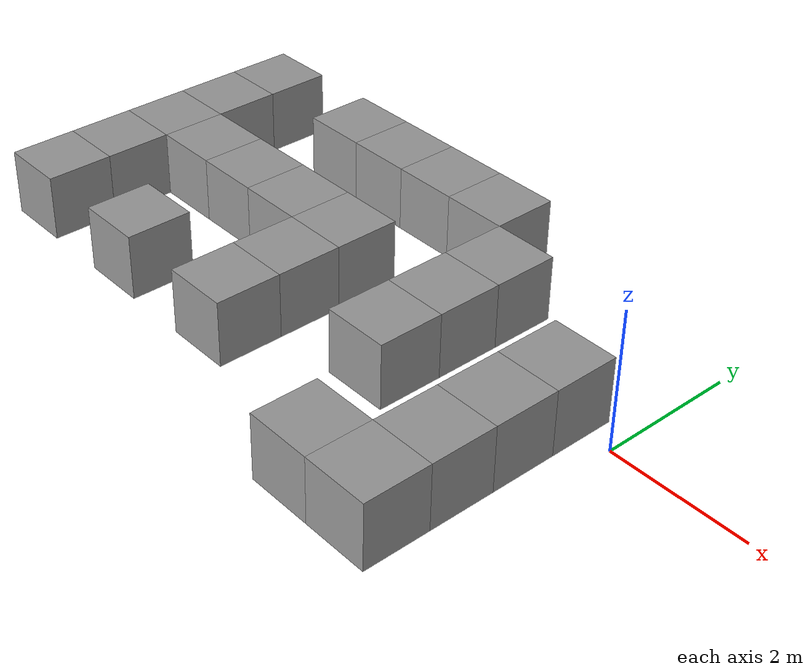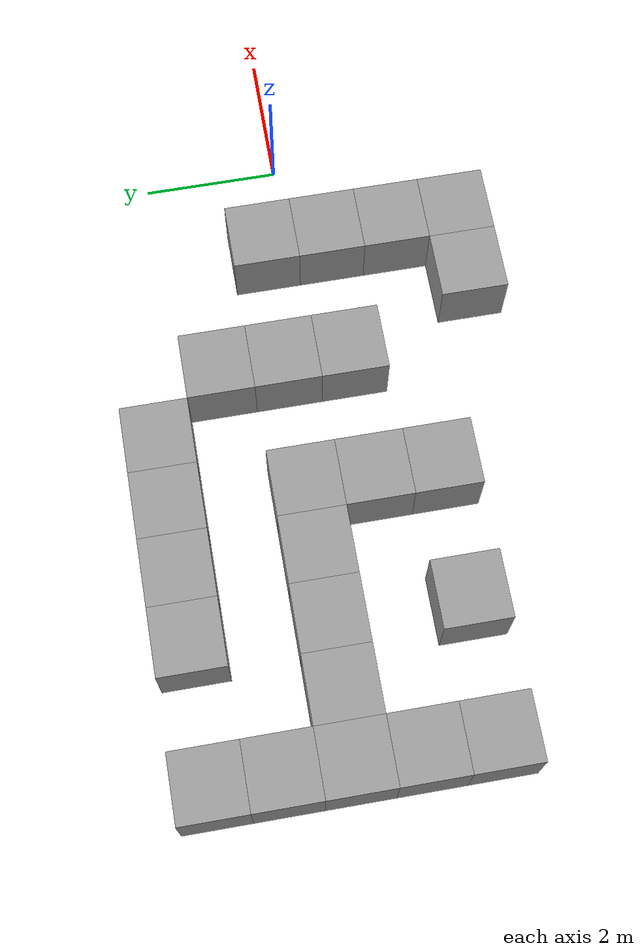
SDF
<sdf version="1.7">
 <model name="maze1">
  <link name="link_1_clone_104">
   <inertial>
    <mass>1</mass>
    <inertia>
     <ixx>0.166667</ixx>
     <ixy>0</ixy>
     <ixz>0</ixz>
     <iyy>0.166667</iyy>
     <iyz>0</iyz>
     <izz>0.166667</izz>
    </inertia>
   </inertial>
   <pose>-8.24618 0.374651 -0 0 -0 0</pose>
   <visual name="visual">
    <geometry><box><size>1 1 1</size></box></geometry>
    <material>
     <lighting>1</lighting>
     <script><uri>file://media/materials/scripts/gazebo.material</uri><name>Gazebo/Grey</name></script>
     <shader type="pixel"><normal_map>__default__</normal_map></shader>
     <ambient>0.3 0.3 0.3 1</ambient>
     <diffuse>0.7 0.7 0.7 1</diffuse>
     <specular>0.01 0.01 0.01 1</specular>
     <emissive>0 0 0 1</emissive>
    </material>
   </visual>
   <collision name="collision">
    <geometry><box><size>1 1 1</size></box></geometry>
    <surface>
     <friction>
      <ode><mu>1</mu><mu2>1</mu2><fdir1>0 0 0</fdir1><slip1>0</slip1><slip2>0</slip2></ode>
      <torsional>
       <coefficient>1</coefficient>
       <patch_radius>0</patch_radius>
       <surface_radius>0</surface_radius>
       <use_patch_radius>1</use_patch_radius>
       <ode><slip>0</slip></ode>
      </torsional>
     </friction>
     <bounce><restitution_coefficient>0</restitution_coefficient><threshold>1e+06</threshold></bounce>
     <contact>
      <collide_without_contact>0</collide_without_contact>
      <collide_without_contact_bitmask>1</collide_without_contact_bitmask>
      <collide_bitmask>1</collide_bitmask>
      <ode>
       <soft_cfm>0</soft_cfm>
       <soft_erp>0.2</soft_erp>
       <kp>1e+13</kp>
       <kd>1</kd>
       <max_vel>0.01</max_vel>
       <min_depth>0</min_depth>
      </ode>
      <bullet>
       <split_impulse>1</split_impulse>
       <split_impulse_penetration_threshold>-0.01</split_impulse_penetration_threshold>
       <soft_cfm>0</soft_cfm>
       <soft_erp>0.2</soft_erp>
       <kp>1e+13</kp>
       <kd>1</kd>
      </bullet>
     </contact>
    </surface>
   </collision>
  </link>
  <link name="link_1_clone_105">
   <inertial>
    <mass>1</mass>
    <inertia>
     <ixx>0.166667</ixx>
     <ixy>0</ixy>
     <ixz>0</ixz>
     <iyy>0.166667</iyy>
     <iyz>0</iyz>
     <izz>0.166667</izz>
    </inertia>
   </inertial>
   <pose>-7.24618 2.37465 -0 0 -0 0</pose>
   <visual name="visual">
    <geometry><box><size>1 1 1</size></box></geometry>
    <material>
     <lighting>1</lighting>
     <script><uri>file://media/materials/scripts/gazebo.material</uri><name>Gazebo/Grey</name></script>
     <shader type="pixel"><normal_map>__default__</normal_map></shader>
     <ambient>0.3 0.3 0.3 1</ambient>
     <diffuse>0.7 0.7 0.7 1</diffuse>
     <specular>0.01 0.01 0.01 1</specular>
     <emissive>0 0 0 1</emissive>
    </material>
   </visual>
   <collision name="collision">
    <geometry><box><size>1 1 1</size></box></geometry>
    <surface>
     <friction>
      <ode><mu>1</mu><mu2>1</mu2><fdir1>0 0 0</fdir1><slip1>0</slip1><slip2>0</slip2></ode>
      <torsional>
       <coefficient>1</coefficient>
       <patch_radius>0</patch_radius>
       <surface_radius>0</surface_radius>
       <use_patch_radius>1</use_patch_radius>
       <ode><slip>0</slip></ode>
      </torsional>
     </friction>
     <bounce><restitution_coefficient>0</restitution_coefficient><threshold>1e+06</threshold></bounce>
     <contact>
      <collide_without_contact>0</collide_without_contact>
      <collide_without_contact_bitmask>1</collide_without_contact_bitmask>
      <collide_bitmask>1</collide_bitmask>
      <ode>
       <soft_cfm>0</soft_cfm>
       <soft_erp>0.2</soft_erp>
       <kp>1e+13</kp>
       <kd>1</kd>
       <max_vel>0.01</max_vel>
       <min_depth>0</min_depth>
      </ode>
      <bullet>
       <split_impulse>1</split_impulse>
       <split_impulse_penetration_threshold>-0.01</split_impulse_penetration_threshold>
       <soft_cfm>0</soft_cfm>
       <soft_erp>0.2</soft_erp>
       <kp>1e+13</kp>
       <kd>1</kd>
      </bullet>
     </contact>
    </surface>
   </collision>
  </link>
  <link name="link_1_clone_106">
   <inertial>
    <mass>1</mass>
    <inertia>
     <ixx>0.166667</ixx>
     <ixy>0</ixy>
     <ixz>0</ixz>
     <iyy>0.166667</iyy>
     <iyz>0</iyz>
     <izz>0.166667</izz>
    </inertia>
   </inertial>
   <pose>-6.24618 2.37465 -0 0 -0 0</pose>
   <visual name="visual">
    <geometry><box><size>1 1 1</size></box></geometry>
    <material>
     <lighting>1</lighting>
     <script><uri>file://media/materials/scripts/gazebo.material</uri><name>Gazebo/Grey</name></script>
     <shader type="pixel"><normal_map>__default__</normal_map></shader>
     <ambient>0.3 0.3 0.3 1</ambient>
     <diffuse>0.7 0.7 0.7 1</diffuse>
     <specular>0.01 0.01 0.01 1</specular>
     <emissive>0 0 0 1</emissive>
    </material>
   </visual>
   <collision name="collision">
    <geometry><box><size>1 1 1</size></box></geometry>
    <surface>
     <friction>
      <ode><mu>1</mu><mu2>1</mu2><fdir1>0 0 0</fdir1><slip1>0</slip1><slip2>0</slip2></ode>
      <torsional>
       <coefficient>1</coefficient>
       <patch_radius>0</patch_radius>
       <surface_radius>0</surface_radius>
       <use_patch_radius>1</use_patch_radius>
       <ode><slip>0</slip></ode>
      </torsional>
     </friction>
     <bounce><restitution_coefficient>0</restitution_coefficient><threshold>1e+06</threshold></bounce>
     <contact>
      <collide_without_contact>0</collide_without_contact>
      <collide_without_contact_bitmask>1</collide_without_contact_bitmask>
      <collide_bitmask>1</collide_bitmask>
      <ode>
       <soft_cfm>0</soft_cfm>
       <soft_erp>0.2</soft_erp>
       <kp>1e+13</kp>
       <kd>1</kd>
       <max_vel>0.01</max_vel>
       <min_depth>0</min_depth>
      </ode>
      <bullet>
       <split_impulse>1</split_impulse>
       <split_impulse_penetration_threshold>-0.01</split_impulse_penetration_threshold>
       <soft_cfm>0</soft_cfm>
       <soft_erp>0.2</soft_erp>
       <kp>1e+13</kp>
       <kd>1</kd>
      </bullet>
     </contact>
    </surface>
   </collision>
  </link>
  <link name="link_1_clone_107">
   <inertial>
    <mass>1</mass>
    <inertia>
     <ixx>0.166667</ixx>
     <ixy>0</ixy>
     <ixz>0</ixz>
     <iyy>0.166667</iyy>
     <iyz>0</iyz>
     <izz>0.166667</izz>
    </inertia>
   </inertial>
   <pose>-5.24618 2.37465 -0 0 -0 0</pose>
   <visual name="visual">
    <geometry><box><size>1 1 1</size></box></geometry>
    <material>
     <lighting>1</lighting>
     <script><uri>file://media/materials/scripts/gazebo.material</uri><name>Gazebo/Grey</name></script>
     <shader type="pixel"><normal_map>__default__</normal_map></shader>
     <ambient>0.3 0.3 0.3 1</ambient>
     <diffuse>0.7 0.7 0.7 1</diffuse>
     <specular>0.01 0.01 0.01 1</specular>
     <emissive>0 0 0 1</emissive>
    </material>
   </visual>
   <collision name="collision">
    <geometry><box><size>1 1 1</size></box></geometry>
    <surface>
     <friction>
      <ode><mu>1</mu><mu2>1</mu2><fdir1>0 0 0</fdir1><slip1>0</slip1><slip2>0</slip2></ode>
      <torsional>
       <coefficient>1</coefficient>
       <patch_radius>0</patch_radius>
       <surface_radius>0</surface_radius>
       <use_patch_radius>1</use_patch_radius>
       <ode><slip>0</slip></ode>
      </torsional>
     </friction>
     <bounce><restitution_coefficient>0</restitution_coefficient><threshold>1e+06</threshold></bounce>
     <contact>
      <collide_without_contact>0</collide_without_contact>
      <collide_without_contact_bitmask>1</collide_without_contact_bitmask>
      <collide_bitmask>1</collide_bitmask>
      <ode>
       <soft_cfm>0</soft_cfm>
       <soft_erp>0.2</soft_erp>
       <kp>1e+13</kp>
       <kd>1</kd>
       <max_vel>0.01</max_vel>
       <min_depth>0</min_depth>
      </ode>
      <bullet>
       <split_impulse>1</split_impulse>
       <split_impulse_penetration_threshold>-0.01</split_impulse_penetration_threshold>
       <soft_cfm>0</soft_cfm>
       <soft_erp>0.2</soft_erp>
       <kp>1e+13</kp>
       <kd>1</kd>
      </bullet>
     </contact>
    </surface>
   </collision>
  </link>
  <link name="link_1_clone_108">
   <inertial>
    <mass>1</mass>
    <inertia>
     <ixx>0.166667</ixx>
     <ixy>0</ixy>
     <ixz>0</ixz>
     <iyy>0.166667</iyy>
     <iyz>0</iyz>
     <izz>0.166667</izz>
    </inertia>
   </inertial>
   <pose>-4.24618 2.37465 -0 0 -0 0</pose>
   <visual name="visual">
    <geometry><box><size>1 1 1</size></box></geometry>
    <material>
     <lighting>1</lighting>
     <script><uri>file://media/materials/scripts/gazebo.material</uri><name>Gazebo/Grey</name></script>
     <shader type="pixel"><normal_map>__default__</normal_map></shader>
     <ambient>0.3 0.3 0.3 1</ambient>
     <diffuse>0.7 0.7 0.7 1</diffuse>
     <specular>0.01 0.01 0.01 1</specular>
     <emissive>0 0 0 1</emissive>
    </material>
   </visual>
   <collision name="collision">
    <geometry><box><size>1 1 1</size></box></geometry>
    <surface>
     <friction>
      <ode><mu>1</mu><mu2>1</mu2><fdir1>0 0 0</fdir1><slip1>0</slip1><slip2>0</slip2></ode>
      <torsional>
       <coefficient>1</coefficient>
       <patch_radius>0</patch_radius>
       <surface_radius>0</surface_radius>
       <use_patch_radius>1</use_patch_radius>
       <ode><slip>0</slip></ode>
      </torsional>
     </friction>
     <bounce><restitution_coefficient>0</restitution_coefficient><threshold>1e+06</threshold></bounce>
     <contact>
      <collide_without_contact>0</collide_without_contact>
      <collide_without_contact_bitmask>1</collide_without_contact_bitmask>
      <collide_bitmask>1</collide_bitmask>
      <ode>
       <soft_cfm>0</soft_cfm>
       <soft_erp>0.2</soft_erp>
       <kp>1e+13</kp>
       <kd>1</kd>
       <max_vel>0.01</max_vel>
       <min_depth>0</min_depth>
      </ode>
      <bullet>
       <split_impulse>1</split_impulse>
       <split_impulse_penetration_threshold>-0.01</split_impulse_penetration_threshold>
       <soft_cfm>0</soft_cfm>
       <soft_erp>0.2</soft_erp>
       <kp>1e+13</kp>
       <kd>1</kd>
      </bullet>
     </contact>
    </surface>
   </collision>
  </link>
  <link name="link_1_clone_109">
   <inertial>
    <mass>1</mass>
    <inertia>
     <ixx>0.166667</ixx>
     <ixy>0</ixy>
     <ixz>0</ixz>
     <iyy>0.166667</iyy>
     <iyz>0</iyz>
     <izz>0.166667</izz>
    </inertia>
   </inertial>
   <pose>-5.24618 0.374651 -0 0 -0 0</pose>
   <visual name="visual">
    <geometry><box><size>1 1 1</size></box></geometry>
    <material>
     <lighting>1</lighting>
     <script><uri>file://media/materials/scripts/gazebo.material</uri><name>Gazebo/Grey</name></script>
     <shader type="pixel"><normal_map>__default__</normal_map></shader>
     <ambient>0.3 0.3 0.3 1</ambient>
     <diffuse>0.7 0.7 0.7 1</diffuse>
     <specular>0.01 0.01 0.01 1</specular>
     <emissive>0 0 0 1</emissive>
    </material>
   </visual>
   <collision name="collision">
    <geometry><box><size>1 1 1</size></box></geometry>
    <surface>
     <friction>
      <ode><mu>1</mu><mu2>1</mu2><fdir1>0 0 0</fdir1><slip1>0</slip1><slip2>0</slip2></ode>
      <torsional>
       <coefficient>1</coefficient>
       <patch_radius>0</patch_radius>
       <surface_radius>0</surface_radius>
       <use_patch_radius>1</use_patch_radius>
       <ode><slip>0</slip></ode>
      </torsional>
     </friction>
     <bounce><restitution_coefficient>0</restitution_coefficient><threshold>1e+06</threshold></bounce>
     <contact>
      <collide_without_contact>0</collide_without_contact>
      <collide_without_contact_bitmask>1</collide_without_contact_bitmask>
      <collide_bitmask>1</collide_bitmask>
      <ode>
       <soft_cfm>0</soft_cfm>
       <soft_erp>0.2</soft_erp>
       <kp>1e+13</kp>
       <kd>1</kd>
       <max_vel>0.01</max_vel>
       <min_depth>0</min_depth>
      </ode>
      <bullet>
       <split_impulse>1</split_impulse>
       <split_impulse_penetration_threshold>-0.01</split_impulse_penetration_threshold>
       <soft_cfm>0</soft_cfm>
       <soft_erp>0.2</soft_erp>
       <kp>1e+13</kp>
       <kd>1</kd>
      </bullet>
     </contact>
    </surface>
   </collision>
  </link>
  <link name="link_1_clone_110">
   <inertial>
    <mass>1</mass>
    <inertia>
     <ixx>0.166667</ixx>
     <ixy>0</ixy>
     <ixz>0</ixz>
     <iyy>0.166667</iyy>
     <iyz>0</iyz>
     <izz>0.166667</izz>
    </inertia>
   </inertial>
   <pose>-3.24618 0.374651 -0 0 -0 0</pose>
   <visual name="visual">
    <geometry><box><size>1 1 1</size></box></geometry>
    <material>
     <lighting>1</lighting>
     <script><uri>file://media/materials/scripts/gazebo.material</uri><name>Gazebo/Grey</name></script>
     <shader type="pixel"><normal_map>__default__</normal_map></shader>
     <ambient>0.3 0.3 0.3 1</ambient>
     <diffuse>0.7 0.7 0.7 1</diffuse>
     <specular>0.01 0.01 0.01 1</specular>
     <emissive>0 0 0 1</emissive>
    </material>
   </visual>
   <collision name="collision">
    <geometry><box><size>1 1 1</size></box></geometry>
    <surface>
     <friction>
      <ode><mu>1</mu><mu2>1</mu2><fdir1>0 0 0</fdir1><slip1>0</slip1><slip2>0</slip2></ode>
      <torsional>
       <coefficient>1</coefficient>
       <patch_radius>0</patch_radius>
       <surface_radius>0</surface_radius>
       <use_patch_radius>1</use_patch_radius>
       <ode><slip>0</slip></ode>
      </torsional>
     </friction>
     <bounce><restitution_coefficient>0</restitution_coefficient><threshold>1e+06</threshold></bounce>
     <contact>
      <collide_without_contact>0</collide_without_contact>
      <collide_without_contact_bitmask>1</collide_without_contact_bitmask>
      <collide_bitmask>1</collide_bitmask>
      <ode>
       <soft_cfm>0</soft_cfm>
       <soft_erp>0.2</soft_erp>
       <kp>1e+13</kp>
       <kd>1</kd>
       <max_vel>0.01</max_vel>
       <min_depth>0</min_depth>
      </ode>
      <bullet>
       <split_impulse>1</split_impulse>
       <split_impulse_penetration_threshold>-0.01</split_impulse_penetration_threshold>
       <soft_cfm>0</soft_cfm>
       <soft_erp>0.2</soft_erp>
       <kp>1e+13</kp>
       <kd>1</kd>
      </bullet>
     </contact>
    </surface>
   </collision>
  </link>
  <link name="link_1_clone_111">
   <inertial>
    <mass>1</mass>
    <inertia>
     <ixx>0.166667</ixx>
     <ixy>0</ixy>
     <ixz>0</ixz>
     <iyy>0.166667</iyy>
     <iyz>0</iyz>
     <izz>0.166667</izz>
    </inertia>
   </inertial>
   <pose>-3.24618 -0.625349 -0 0 -0 0</pose>
   <visual name="visual">
    <geometry><box><size>1 1 1</size></box></geometry>
    <material>
     <lighting>1</lighting>
     <script><uri>file://media/materials/scripts/gazebo.material</uri><name>Gazebo/Grey</name></script>
     <shader type="pixel"><normal_map>__default__</normal_map></shader>
     <ambient>0.3 0.3 0.3 1</ambient>
     <diffuse>0.7 0.7 0.7 1</diffuse>
     <specular>0.01 0.01 0.01 1</specular>
     <emissive>0 0 0 1</emissive>
    </material>
   </visual>
   <collision name="collision">
    <geometry><box><size>1 1 1</size></box></geometry>
    <surface>
     <friction>
      <ode><mu>1</mu><mu2>1</mu2><fdir1>0 0 0</fdir1><slip1>0</slip1><slip2>0</slip2></ode>
      <torsional>
       <coefficient>1</coefficient>
       <patch_radius>0</patch_radius>
       <surface_radius>0</surface_radius>
       <use_patch_radius>1</use_patch_radius>
       <ode><slip>0</slip></ode>
      </torsional>
     </friction>
     <bounce><restitution_coefficient>0</restitution_coefficient><threshold>1e+06</threshold></bounce>
     <contact>
      <collide_without_contact>0</collide_without_contact>
      <collide_without_contact_bitmask>1</collide_without_contact_bitmask>
      <collide_bitmask>1</collide_bitmask>
      <ode>
       <soft_cfm>0</soft_cfm>
       <soft_erp>0.2</soft_erp>
       <kp>1e+13</kp>
       <kd>1</kd>
       <max_vel>0.01</max_vel>
       <min_depth>0</min_depth>
      </ode>
      <bullet>
       <split_impulse>1</split_impulse>
       <split_impulse_penetration_threshold>-0.01</split_impulse_penetration_threshold>
       <soft_cfm>0</soft_cfm>
       <soft_erp>0.2</soft_erp>
       <kp>1e+13</kp>
       <kd>1</kd>
      </bullet>
     </contact>
    </surface>
   </collision>
  </link>
  <link name="link_1_clone_112">
   <inertial>
    <mass>1</mass>
    <inertia>
     <ixx>0.166667</ixx>
     <ixy>0</ixy>
     <ixz>0</ixz>
     <iyy>0.166667</iyy>
     <iyz>0</iyz>
     <izz>0.166667</izz>
    </inertia>
   </inertial>
   <pose>-7.24618 0.374651 -0 0 -0 0</pose>
   <visual name="visual">
    <geometry><box><size>1 1 1</size></box></geometry>
    <material>
     <lighting>1</lighting>
     <script><uri>file://media/materials/scripts/gazebo.material</uri><name>Gazebo/Grey</name></script>
     <shader type="pixel"><normal_map>__default__</normal_map></shader>
     <ambient>0.3 0.3 0.3 1</ambient>
     <diffuse>0.7 0.7 0.7 1</diffuse>
     <specular>0.01 0.01 0.01 1</specular>
     <emissive>0 0 0 1</emissive>
    </material>
   </visual>
   <collision name="collision">
    <geometry><box><size>1 1 1</size></box></geometry>
    <surface>
     <friction>
      <ode><mu>1</mu><mu2>1</mu2><fdir1>0 0 0</fdir1><slip1>0</slip1><slip2>0</slip2></ode>
      <torsional>
       <coefficient>1</coefficient>
       <patch_radius>0</patch_radius>
       <surface_radius>0</surface_radius>
       <use_patch_radius>1</use_patch_radius>
       <ode><slip>0</slip></ode>
      </torsional>
     </friction>
     <bounce><restitution_coefficient>0</restitution_coefficient><threshold>1e+06</threshold></bounce>
     <contact>
      <collide_without_contact>0</collide_without_contact>
      <collide_without_contact_bitmask>1</collide_without_contact_bitmask>
      <collide_bitmask>1</collide_bitmask>
      <ode>
       <soft_cfm>0</soft_cfm>
       <soft_erp>0.2</soft_erp>
       <kp>1e+13</kp>
       <kd>1</kd>
       <max_vel>0.01</max_vel>
       <min_depth>0</min_depth>
      </ode>
      <bullet>
       <split_impulse>1</split_impulse>
       <split_impulse_penetration_threshold>-0.01</split_impulse_penetration_threshold>
       <soft_cfm>0</soft_cfm>
       <soft_erp>0.2</soft_erp>
       <kp>1e+13</kp>
       <kd>1</kd>
      </bullet>
     </contact>
    </surface>
   </collision>
  </link>
  <link name="link_1_clone_113">
   <inertial>
    <mass>1</mass>
    <inertia>
     <ixx>0.166667</ixx>
     <ixy>0</ixy>
     <ixz>0</ixz>
     <iyy>0.166667</iyy>
     <iyz>0</iyz>
     <izz>0.166667</izz>
    </inertia>
   </inertial>
   <pose>-6.24618 0.374651 -0 0 -0 0</pose>
   <visual name="visual">
    <geometry><box><size>1 1 1</size></box></geometry>
    <material>
     <lighting>1</lighting>
     <script><uri>file://media/materials/scripts/gazebo.material</uri><name>Gazebo/Grey</name></script>
     <shader type="pixel"><normal_map>__default__</normal_map></shader>
     <ambient>0.3 0.3 0.3 1</ambient>
     <diffuse>0.7 0.7 0.7 1</diffuse>
     <specular>0.01 0.01 0.01 1</specular>
     <emissive>0 0 0 1</emissive>
    </material>
   </visual>
   <collision name="collision">
    <geometry><box><size>1 1 1</size></box></geometry>
    <surface>
     <friction>
      <ode><mu>1</mu><mu2>1</mu2><fdir1>0 0 0</fdir1><slip1>0</slip1><slip2>0</slip2></ode>
      <torsional>
       <coefficient>1</coefficient>
       <patch_radius>0</patch_radius>
       <surface_radius>0</surface_radius>
       <use_patch_radius>1</use_patch_radius>
       <ode><slip>0</slip></ode>
      </torsional>
     </friction>
     <bounce><restitution_coefficient>0</restitution_coefficient><threshold>1e+06</threshold></bounce>
     <contact>
      <collide_without_contact>0</collide_without_contact>
      <collide_without_contact_bitmask>1</collide_without_contact_bitmask>
      <collide_bitmask>1</collide_bitmask>
      <ode>
       <soft_cfm>0</soft_cfm>
       <soft_erp>0.2</soft_erp>
       <kp>1e+13</kp>
       <kd>1</kd>
       <max_vel>0.01</max_vel>
       <min_depth>0</min_depth>
      </ode>
      <bullet>
       <split_impulse>1</split_impulse>
       <split_impulse_penetration_threshold>-0.01</split_impulse_penetration_threshold>
       <soft_cfm>0</soft_cfm>
       <soft_erp>0.2</soft_erp>
       <kp>1e+13</kp>
       <kd>1</kd>
      </bullet>
     </contact>
    </surface>
   </collision>
  </link>
  <link name="link_1_clone_115">
   <inertial>
    <mass>1</mass>
    <inertia>
     <ixx>0.166667</ixx>
     <ixy>0</ixy>
     <ixz>0</ixz>
     <iyy>0.166667</iyy>
     <iyz>0</iyz>
     <izz>0.166667</izz>
    </inertia>
   </inertial>
   <pose>-3.24618 1.37465 -0 0 -0 0</pose>
   <visual name="visual">
    <geometry><box><size>1 1 1</size></box></geometry>
    <material>
     <lighting>1</lighting>
     <script><uri>file://media/materials/scripts/gazebo.material</uri><name>Gazebo/Grey</name></script>
     <shader type="pixel"><normal_map>__default__</normal_map></shader>
     <ambient>0.3 0.3 0.3 1</ambient>
     <diffuse>0.7 0.7 0.7 1</diffuse>
     <specular>0.01 0.01 0.01 1</specular>
     <emissive>0 0 0 1</emissive>
    </material>
   </visual>
   <collision name="collision">
    <geometry><box><size>1 1 1</size></box></geometry>
    <surface>
     <friction>
      <ode><mu>1</mu><mu2>1</mu2><fdir1>0 0 0</fdir1><slip1>0</slip1><slip2>0</slip2></ode>
      <torsional>
       <coefficient>1</coefficient>
       <patch_radius>0</patch_radius>
       <surface_radius>0</surface_radius>
       <use_patch_radius>1</use_patch_radius>
       <ode><slip>0</slip></ode>
      </torsional>
     </friction>
     <bounce><restitution_coefficient>0</restitution_coefficient><threshold>1e+06</threshold></bounce>
     <contact>
      <collide_without_contact>0</collide_without_contact>
      <collide_without_contact_bitmask>1</collide_without_contact_bitmask>
      <collide_bitmask>1</collide_bitmask>
      <ode>
       <soft_cfm>0</soft_cfm>
       <soft_erp>0.2</soft_erp>
       <kp>1e+13</kp>
       <kd>1</kd>
       <max_vel>0.01</max_vel>
       <min_depth>0</min_depth>
      </ode>
      <bullet>
       <split_impulse>1</split_impulse>
       <split_impulse_penetration_threshold>-0.01</split_impulse_penetration_threshold>
       <soft_cfm>0</soft_cfm>
       <soft_erp>0.2</soft_erp>
       <kp>1e+13</kp>
       <kd>1</kd>
      </bullet>
     </contact>
    </surface>
   </collision>
  </link>
  <link name="link_1_clone_116">
   <inertial>
    <mass>1</mass>
    <inertia>
     <ixx>0.166667</ixx>
     <ixy>0</ixy>
     <ixz>0</ixz>
     <iyy>0.166667</iyy>
     <iyz>0</iyz>
     <izz>0.166667</izz>
    </inertia>
   </inertial>
   <pose>-5.24618 -0.625349 -0 0 -0 0</pose>
   <visual name="visual">
    <geometry><box><size>1 1 1</size></box></geometry>
    <material>
     <lighting>1</lighting>
     <script><uri>file://media/materials/scripts/gazebo.material</uri><name>Gazebo/Grey</name></script>
     <shader type="pixel"><normal_map>__default__</normal_map></shader>
     <ambient>0.3 0.3 0.3 1</ambient>
     <diffuse>0.7 0.7 0.7 1</diffuse>
     <specular>0.01 0.01 0.01 1</specular>
     <emissive>0 0 0 1</emissive>
    </material>
   </visual>
   <collision name="collision">
    <geometry><box><size>1 1 1</size></box></geometry>
    <surface>
     <friction>
      <ode><mu>1</mu><mu2>1</mu2><fdir1>0 0 0</fdir1><slip1>0</slip1><slip2>0</slip2></ode>
      <torsional>
       <coefficient>1</coefficient>
       <patch_radius>0</patch_radius>
       <surface_radius>0</surface_radius>
       <use_patch_radius>1</use_patch_radius>
       <ode><slip>0</slip></ode>
      </torsional>
     </friction>
     <bounce><restitution_coefficient>0</restitution_coefficient><threshold>1e+06</threshold></bounce>
     <contact>
      <collide_without_contact>0</collide_without_contact>
      <collide_without_contact_bitmask>1</collide_without_contact_bitmask>
      <collide_bitmask>1</collide_bitmask>
      <ode>
       <soft_cfm>0</soft_cfm>
       <soft_erp>0.2</soft_erp>
       <kp>1e+13</kp>
       <kd>1</kd>
       <max_vel>0.01</max_vel>
       <min_depth>0</min_depth>
      </ode>
      <bullet>
       <split_impulse>1</split_impulse>
       <split_impulse_penetration_threshold>-0.01</split_impulse_penetration_threshold>
       <soft_cfm>0</soft_cfm>
       <soft_erp>0.2</soft_erp>
       <kp>1e+13</kp>
       <kd>1</kd>
      </bullet>
     </contact>
    </surface>
   </collision>
  </link>
  <link name="link_1_clone_117">
   <inertial>
    <mass>1</mass>
    <inertia>
     <ixx>0.166667</ixx>
     <ixy>0</ixy>
     <ixz>0</ixz>
     <iyy>0.166667</iyy>
     <iyz>0</iyz>
     <izz>0.166667</izz>
    </inertia>
   </inertial>
   <pose>-5.24618 -1.62535 -0 0 -0 0</pose>
   <visual name="visual">
    <geometry><box><size>1 1 1</size></box></geometry>
    <material>
     <lighting>1</lighting>
     <script><uri>file://media/materials/scripts/gazebo.material</uri><name>Gazebo/Grey</name></script>
     <shader type="pixel"><normal_map>__default__</normal_map></shader>
     <ambient>0.3 0.3 0.3 1</ambient>
     <diffuse>0.7 0.7 0.7 1</diffuse>
     <specular>0.01 0.01 0.01 1</specular>
     <emissive>0 0 0 1</emissive>
    </material>
   </visual>
   <collision name="collision">
    <geometry><box><size>1 1 1</size></box></geometry>
    <surface>
     <friction>
      <ode><mu>1</mu><mu2>1</mu2><fdir1>0 0 0</fdir1><slip1>0</slip1><slip2>0</slip2></ode>
      <torsional>
       <coefficient>1</coefficient>
       <patch_radius>0</patch_radius>
       <surface_radius>0</surface_radius>
       <use_patch_radius>1</use_patch_radius>
       <ode><slip>0</slip></ode>
      </torsional>
     </friction>
     <bounce><restitution_coefficient>0</restitution_coefficient><threshold>1e+06</threshold></bounce>
     <contact>
      <collide_without_contact>0</collide_without_contact>
      <collide_without_contact_bitmask>1</collide_without_contact_bitmask>
      <collide_bitmask>1</collide_bitmask>
      <ode>
       <soft_cfm>0</soft_cfm>
       <soft_erp>0.2</soft_erp>
       <kp>1e+13</kp>
       <kd>1</kd>
       <max_vel>0.01</max_vel>
       <min_depth>0</min_depth>
      </ode>
      <bullet>
       <split_impulse>1</split_impulse>
       <split_impulse_penetration_threshold>-0.01</split_impulse_penetration_threshold>
       <soft_cfm>0</soft_cfm>
       <soft_erp>0.2</soft_erp>
       <kp>1e+13</kp>
       <kd>1</kd>
      </bullet>
     </contact>
    </surface>
   </collision>
  </link>
  <link name="link_1_clone_121">
   <inertial>
    <mass>1</mass>
    <inertia>
     <ixx>0.166667</ixx>
     <ixy>0</ixy>
     <ixz>0</ixz>
     <iyy>0.166667</iyy>
     <iyz>0</iyz>
     <izz>0.166667</izz>
    </inertia>
   </inertial>
   <pose>-7.24642 -1.626 -0 0 -0 0</pose>
   <visual name="visual">
    <geometry><box><size>1 1 1</size></box></geometry>
    <material>
     <lighting>1</lighting>
     <script><uri>file://media/materials/scripts/gazebo.material</uri><name>Gazebo/Grey</name></script>
     <shader type="pixel"><normal_map>__default__</normal_map></shader>
     <ambient>0.3 0.3 0.3 1</ambient>
     <diffuse>0.7 0.7 0.7 1</diffuse>
     <specular>0.01 0.01 0.01 1</specular>
     <emissive>0 0 0 1</emissive>
    </material>
   </visual>
   <collision name="collision">
    <geometry><box><size>1 1 1</size></box></geometry>
    <surface>
     <friction>
      <ode><mu>1</mu><mu2>1</mu2><fdir1>0 0 0</fdir1><slip1>0</slip1><slip2>0</slip2></ode>
      <torsional>
       <coefficient>1</coefficient>
       <patch_radius>0</patch_radius>
       <surface_radius>0</surface_radius>
       <use_patch_radius>1</use_patch_radius>
       <ode><slip>0</slip></ode>
      </torsional>
     </friction>
     <bounce><restitution_coefficient>0</restitution_coefficient><threshold>1e+06</threshold></bounce>
     <contact>
      <collide_without_contact>0</collide_without_contact>
      <collide_without_contact_bitmask>1</collide_without_contact_bitmask>
      <collide_bitmask>1</collide_bitmask>
      <ode>
       <soft_cfm>0</soft_cfm>
       <soft_erp>0.2</soft_erp>
       <kp>1e+13</kp>
       <kd>1</kd>
       <max_vel>0.01</max_vel>
       <min_depth>0</min_depth>
      </ode>
      <bullet>
       <split_impulse>1</split_impulse>
       <split_impulse_penetration_threshold>-0.01</split_impulse_penetration_threshold>
       <soft_cfm>0</soft_cfm>
       <soft_erp>0.2</soft_erp>
       <kp>1e+13</kp>
       <kd>1</kd>
      </bullet>
     </contact>
    </surface>
   </collision>
  </link>
  <link name="link_1_clone_175">
   <inertial>
    <mass>1</mass>
    <inertia>
     <ixx>0.166667</ixx>
     <ixy>0</ixy>
     <ixz>0</ixz>
     <iyy>0.166667</iyy>
     <iyz>0</iyz>
     <izz>0.166667</izz>
    </inertia>
   </inertial>
   <pose>-1.24618 -2.62535 -0 0 -0 0</pose>
   <visual name="visual">
    <geometry><box><size>1 1 1</size></box></geometry>
    <material>
     <lighting>1</lighting>
     <script><uri>file://media/materials/scripts/gazebo.material</uri><name>Gazebo/Grey</name></script>
     <shader type="pixel"><normal_map>__default__</normal_map></shader>
     <ambient>0.3 0.3 0.3 1</ambient>
     <diffuse>0.7 0.7 0.7 1</diffuse>
     <specular>0.01 0.01 0.01 1</specular>
     <emissive>0 0 0 1</emissive>
    </material>
   </visual>
   <collision name="collision">
    <geometry><box><size>1 1 1</size></box></geometry>
    <surface>
     <friction>
      <ode><mu>1</mu><mu2>1</mu2><fdir1>0 0 0</fdir1><slip1>0</slip1><slip2>0</slip2></ode>
      <torsional>
       <coefficient>1</coefficient>
       <patch_radius>0</patch_radius>
       <surface_radius>0</surface_radius>
       <use_patch_radius>1</use_patch_radius>
       <ode><slip>0</slip></ode>
      </torsional>
     </friction>
     <bounce><restitution_coefficient>0</restitution_coefficient><threshold>1e+06</threshold></bounce>
     <contact>
      <collide_without_contact>0</collide_without_contact>
      <collide_without_contact_bitmask>1</collide_without_contact_bitmask>
      <collide_bitmask>1</collide_bitmask>
      <ode>
       <soft_cfm>0</soft_cfm>
       <soft_erp>0.2</soft_erp>
       <kp>1e+13</kp>
       <kd>1</kd>
       <max_vel>0.01</max_vel>
       <min_depth>0</min_depth>
      </ode>
      <bullet>
       <split_impulse>1</split_impulse>
       <split_impulse_penetration_threshold>-0.01</split_impulse_penetration_threshold>
       <soft_cfm>0</soft_cfm>
       <soft_erp>0.2</soft_erp>
       <kp>1e+13</kp>
       <kd>1</kd>
      </bullet>
     </contact>
    </surface>
   </collision>
  </link>
  <link name="link_1_clone_176">
   <inertial>
    <mass>1</mass>
    <inertia>
     <ixx>0.166667</ixx>
     <ixy>0</ixy>
     <ixz>0</ixz>
     <iyy>0.166667</iyy>
     <iyz>0</iyz>
     <izz>0.166667</izz>
    </inertia>
   </inertial>
   <pose>-2.24618 -2.62535 -0 0 -0 0</pose>
   <visual name="visual">
    <geometry><box><size>1 1 1</size></box></geometry>
    <material>
     <lighting>1</lighting>
     <script><uri>file://media/materials/scripts/gazebo.material</uri><name>Gazebo/Grey</name></script>
     <shader type="pixel"><normal_map>__default__</normal_map></shader>
     <ambient>0.3 0.3 0.3 1</ambient>
     <diffuse>0.7 0.7 0.7 1</diffuse>
     <specular>0.01 0.01 0.01 1</specular>
     <emissive>0 0 0 1</emissive>
    </material>
   </visual>
   <collision name="collision">
    <geometry><box><size>1 1 1</size></box></geometry>
    <surface>
     <friction>
      <ode><mu>1</mu><mu2>1</mu2><fdir1>0 0 0</fdir1><slip1>0</slip1><slip2>0</slip2></ode>
      <torsional>
       <coefficient>1</coefficient>
       <patch_radius>0</patch_radius>
       <surface_radius>0</surface_radius>
       <use_patch_radius>1</use_patch_radius>
       <ode><slip>0</slip></ode>
      </torsional>
     </friction>
     <bounce><restitution_coefficient>0</restitution_coefficient><threshold>1e+06</threshold></bounce>
     <contact>
      <collide_without_contact>0</collide_without_contact>
      <collide_without_contact_bitmask>1</collide_without_contact_bitmask>
      <collide_bitmask>1</collide_bitmask>
      <ode>
       <soft_cfm>0</soft_cfm>
       <soft_erp>0.2</soft_erp>
       <kp>1e+13</kp>
       <kd>1</kd>
       <max_vel>0.01</max_vel>
       <min_depth>0</min_depth>
      </ode>
      <bullet>
       <split_impulse>1</split_impulse>
       <split_impulse_penetration_threshold>-0.01</split_impulse_penetration_threshold>
       <soft_cfm>0</soft_cfm>
       <soft_erp>0.2</soft_erp>
       <kp>1e+13</kp>
       <kd>1</kd>
      </bullet>
     </contact>
    </surface>
   </collision>
  </link>
  <link name="link_1_clone_180">
   <inertial>
    <mass>1</mass>
    <inertia>
     <ixx>0.166667</ixx>
     <ixy>0</ixy>
     <ixz>0</ixz>
     <iyy>0.166667</iyy>
     <iyz>0</iyz>
     <izz>0.166667</izz>
    </inertia>
   </inertial>
   <pose>-1.24618 0.374651 -0 0 -0 0</pose>
   <visual name="visual">
    <geometry><box><size>1 1 1</size></box></geometry>
    <material>
     <lighting>1</lighting>
     <script><uri>file://media/materials/scripts/gazebo.material</uri><name>Gazebo/Grey</name></script>
     <shader type="pixel"><normal_map>__default__</normal_map></shader>
     <ambient>0.3 0.3 0.3 1</ambient>
     <diffuse>0.7 0.7 0.7 1</diffuse>
     <specular>0.01 0.01 0.01 1</specular>
     <emissive>0 0 0 1</emissive>
    </material>
   </visual>
   <collision name="collision">
    <geometry><box><size>1 1 1</size></box></geometry>
    <surface>
     <friction>
      <ode><mu>1</mu><mu2>1</mu2><fdir1>0 0 0</fdir1><slip1>0</slip1><slip2>0</slip2></ode>
      <torsional>
       <coefficient>1</coefficient>
       <patch_radius>0</patch_radius>
       <surface_radius>0</surface_radius>
       <use_patch_radius>1</use_patch_radius>
       <ode><slip>0</slip></ode>
      </torsional>
     </friction>
     <bounce><restitution_coefficient>0</restitution_coefficient><threshold>1e+06</threshold></bounce>
     <contact>
      <collide_without_contact>0</collide_without_contact>
      <collide_without_contact_bitmask>1</collide_without_contact_bitmask>
      <collide_bitmask>1</collide_bitmask>
      <ode>
       <soft_cfm>0</soft_cfm>
       <soft_erp>0.2</soft_erp>
       <kp>1e+13</kp>
       <kd>1</kd>
       <max_vel>0.01</max_vel>
       <min_depth>0</min_depth>
      </ode>
      <bullet>
       <split_impulse>1</split_impulse>
       <split_impulse_penetration_threshold>-0.01</split_impulse_penetration_threshold>
       <soft_cfm>0</soft_cfm>
       <soft_erp>0.2</soft_erp>
       <kp>1e+13</kp>
       <kd>1</kd>
      </bullet>
     </contact>
    </surface>
   </collision>
  </link>
  <link name="link_1_clone_181">
   <inertial>
    <mass>1</mass>
    <inertia>
     <ixx>0.166667</ixx>
     <ixy>0</ixy>
     <ixz>0</ixz>
     <iyy>0.166667</iyy>
     <iyz>0</iyz>
     <izz>0.166667</izz>
    </inertia>
   </inertial>
   <pose>-1.24618 -0.625349 -0 0 -0 0</pose>
   <visual name="visual">
    <geometry><box><size>1 1 1</size></box></geometry>
    <material>
     <lighting>1</lighting>
     <script><uri>file://media/materials/scripts/gazebo.material</uri><name>Gazebo/Grey</name></script>
     <shader type="pixel"><normal_map>__default__</normal_map></shader>
     <ambient>0.3 0.3 0.3 1</ambient>
     <diffuse>0.7 0.7 0.7 1</diffuse>
     <specular>0.01 0.01 0.01 1</specular>
     <emissive>0 0 0 1</emissive>
    </material>
   </visual>
   <collision name="collision">
    <geometry><box><size>1 1 1</size></box></geometry>
    <surface>
     <friction>
      <ode><mu>1</mu><mu2>1</mu2><fdir1>0 0 0</fdir1><slip1>0</slip1><slip2>0</slip2></ode>
      <torsional>
       <coefficient>1</coefficient>
       <patch_radius>0</patch_radius>
       <surface_radius>0</surface_radius>
       <use_patch_radius>1</use_patch_radius>
       <ode><slip>0</slip></ode>
      </torsional>
     </friction>
     <bounce><restitution_coefficient>0</restitution_coefficient><threshold>1e+06</threshold></bounce>
     <contact>
      <collide_without_contact>0</collide_without_contact>
      <collide_without_contact_bitmask>1</collide_without_contact_bitmask>
      <collide_bitmask>1</collide_bitmask>
      <ode>
       <soft_cfm>0</soft_cfm>
       <soft_erp>0.2</soft_erp>
       <kp>1e+13</kp>
       <kd>1</kd>
       <max_vel>0.01</max_vel>
       <min_depth>0</min_depth>
      </ode>
      <bullet>
       <split_impulse>1</split_impulse>
       <split_impulse_penetration_threshold>-0.01</split_impulse_penetration_threshold>
       <soft_cfm>0</soft_cfm>
       <soft_erp>0.2</soft_erp>
       <kp>1e+13</kp>
       <kd>1</kd>
      </bullet>
     </contact>
    </surface>
   </collision>
  </link>
  <link name="link_1_clone_182">
   <inertial>
    <mass>1</mass>
    <inertia>
     <ixx>0.166667</ixx>
     <ixy>0</ixy>
     <ixz>0</ixz>
     <iyy>0.166667</iyy>
     <iyz>0</iyz>
     <izz>0.166667</izz>
    </inertia>
   </inertial>
   <pose>-1.24618 -1.62535 -0 0 -0 0</pose>
   <visual name="visual">
    <geometry><box><size>1 1 1</size></box></geometry>
    <material>
     <lighting>1</lighting>
     <script><uri>file://media/materials/scripts/gazebo.material</uri><name>Gazebo/Grey</name></script>
     <shader type="pixel"><normal_map>__default__</normal_map></shader>
     <ambient>0.3 0.3 0.3 1</ambient>
     <diffuse>0.7 0.7 0.7 1</diffuse>
     <specular>0.01 0.01 0.01 1</specular>
     <emissive>0 0 0 1</emissive>
    </material>
   </visual>
   <collision name="collision">
    <geometry><box><size>1 1 1</size></box></geometry>
    <surface>
     <friction>
      <ode><mu>1</mu><mu2>1</mu2><fdir1>0 0 0</fdir1><slip1>0</slip1><slip2>0</slip2></ode>
      <torsional>
       <coefficient>1</coefficient>
       <patch_radius>0</patch_radius>
       <surface_radius>0</surface_radius>
       <use_patch_radius>1</use_patch_radius>
       <ode><slip>0</slip></ode>
      </torsional>
     </friction>
     <bounce><restitution_coefficient>0</restitution_coefficient><threshold>1e+06</threshold></bounce>
     <contact>
      <collide_without_contact>0</collide_without_contact>
      <collide_without_contact_bitmask>1</collide_without_contact_bitmask>
      <collide_bitmask>1</collide_bitmask>
      <ode>
       <soft_cfm>0</soft_cfm>
       <soft_erp>0.2</soft_erp>
       <kp>1e+13</kp>
       <kd>1</kd>
       <max_vel>0.01</max_vel>
       <min_depth>0</min_depth>
      </ode>
      <bullet>
       <split_impulse>1</split_impulse>
       <split_impulse_penetration_threshold>-0.01</split_impulse_penetration_threshold>
       <soft_cfm>0</soft_cfm>
       <soft_erp>0.2</soft_erp>
       <kp>1e+13</kp>
       <kd>1</kd>
      </bullet>
     </contact>
    </surface>
   </collision>
  </link>
  <link name="link_1_clone_22">
   <inertial>
    <mass>1</mass>
    <inertia>
     <ixx>0.166667</ixx>
     <ixy>0</ixy>
     <ixz>0</ixz>
     <iyy>0.166667</iyy>
     <iyz>0</iyz>
     <izz>0.166667</izz>
    </inertia>
   </inertial>
   <pose>-9.24618 2.37465 -0 0 -0 0</pose>
   <visual name="visual">
    <geometry><box><size>1 1 1</size></box></geometry>
    <material>
     <lighting>1</lighting>
     <script><uri>file://media/materials/scripts/gazebo.material</uri><name>Gazebo/Grey</name></script>
     <shader type="pixel"><normal_map>__default__</normal_map></shader>
     <ambient>0.3 0.3 0.3 1</ambient>
     <diffuse>0.7 0.7 0.7 1</diffuse>
     <specular>0.01 0.01 0.01 1</specular>
     <emissive>0 0 0 1</emissive>
    </material>
   </visual>
   <collision name="collision">
    <geometry><box><size>1 1 1</size></box></geometry>
    <surface>
     <friction>
      <ode><mu>1</mu><mu2>1</mu2><fdir1>0 0 0</fdir1><slip1>0</slip1><slip2>0</slip2></ode>
      <torsional>
       <coefficient>1</coefficient>
       <patch_radius>0</patch_radius>
       <surface_radius>0</surface_radius>
       <use_patch_radius>1</use_patch_radius>
       <ode><slip>0</slip></ode>
      </torsional>
     </friction>
     <bounce><restitution_coefficient>0</restitution_coefficient><threshold>1e+06</threshold></bounce>
     <contact>
      <collide_without_contact>0</collide_without_contact>
      <collide_without_contact_bitmask>1</collide_without_contact_bitmask>
      <collide_bitmask>1</collide_bitmask>
      <ode>
       <soft_cfm>0</soft_cfm>
       <soft_erp>0.2</soft_erp>
       <kp>1e+13</kp>
       <kd>1</kd>
       <max_vel>0.01</max_vel>
       <min_depth>0</min_depth>
      </ode>
      <bullet>
       <split_impulse>1</split_impulse>
       <split_impulse_penetration_threshold>-0.01</split_impulse_penetration_threshold>
       <soft_cfm>0</soft_cfm>
       <soft_erp>0.2</soft_erp>
       <kp>1e+13</kp>
       <kd>1</kd>
      </bullet>
     </contact>
    </surface>
   </collision>
  </link>
  <link name="link_1_clone_23">
   <inertial>
    <mass>1</mass>
    <inertia>
     <ixx>0.166667</ixx>
     <ixy>0</ixy>
     <ixz>0</ixz>
     <iyy>0.166667</iyy>
     <iyz>0</iyz>
     <izz>0.166667</izz>
    </inertia>
   </inertial>
   <pose>-9.24618 1.37465 -0 0 -0 0</pose>
   <visual name="visual">
    <geometry><box><size>1 1 1</size></box></geometry>
    <material>
     <lighting>1</lighting>
     <script><uri>file://media/materials/scripts/gazebo.material</uri><name>Gazebo/Grey</name></script>
     <shader type="pixel"><normal_map>__default__</normal_map></shader>
     <ambient>0.3 0.3 0.3 1</ambient>
     <diffuse>0.7 0.7 0.7 1</diffuse>
     <specular>0.01 0.01 0.01 1</specular>
     <emissive>0 0 0 1</emissive>
    </material>
   </visual>
   <collision name="collision">
    <geometry><box><size>1 1 1</size></box></geometry>
    <surface>
     <friction>
      <ode><mu>1</mu><mu2>1</mu2><fdir1>0 0 0</fdir1><slip1>0</slip1><slip2>0</slip2></ode>
      <torsional>
       <coefficient>1</coefficient>
       <patch_radius>0</patch_radius>
       <surface_radius>0</surface_radius>
       <use_patch_radius>1</use_patch_radius>
       <ode><slip>0</slip></ode>
      </torsional>
     </friction>
     <bounce><restitution_coefficient>0</restitution_coefficient><threshold>1e+06</threshold></bounce>
     <contact>
      <collide_without_contact>0</collide_without_contact>
      <collide_without_contact_bitmask>1</collide_without_contact_bitmask>
      <collide_bitmask>1</collide_bitmask>
      <ode>
       <soft_cfm>0</soft_cfm>
       <soft_erp>0.2</soft_erp>
       <kp>1e+13</kp>
       <kd>1</kd>
       <max_vel>0.01</max_vel>
       <min_depth>0</min_depth>
      </ode>
      <bullet>
       <split_impulse>1</split_impulse>
       <split_impulse_penetration_threshold>-0.01</split_impulse_penetration_threshold>
       <soft_cfm>0</soft_cfm>
       <soft_erp>0.2</soft_erp>
       <kp>1e+13</kp>
       <kd>1</kd>
      </bullet>
     </contact>
    </surface>
   </collision>
  </link>
  <link name="link_1_clone_24">
   <inertial>
    <mass>1</mass>
    <inertia>
     <ixx>0.166667</ixx>
     <ixy>0</ixy>
     <ixz>0</ixz>
     <iyy>0.166667</iyy>
     <iyz>0</iyz>
     <izz>0.166667</izz>
    </inertia>
   </inertial>
   <pose>-9.24618 0.374651 -0 0 -0 0</pose>
   <visual name="visual">
    <geometry><box><size>1 1 1</size></box></geometry>
    <material>
     <lighting>1</lighting>
     <script><uri>file://media/materials/scripts/gazebo.material</uri><name>Gazebo/Grey</name></script>
     <shader type="pixel"><normal_map>__default__</normal_map></shader>
     <ambient>0.3 0.3 0.3 1</ambient>
     <diffuse>0.7 0.7 0.7 1</diffuse>
     <specular>0.01 0.01 0.01 1</specular>
     <emissive>0 0 0 1</emissive>
    </material>
   </visual>
   <collision name="collision">
    <geometry><box><size>1 1 1</size></box></geometry>
    <surface>
     <friction>
      <ode><mu>1</mu><mu2>1</mu2><fdir1>0 0 0</fdir1><slip1>0</slip1><slip2>0</slip2></ode>
      <torsional>
       <coefficient>1</coefficient>
       <patch_radius>0</patch_radius>
       <surface_radius>0</surface_radius>
       <use_patch_radius>1</use_patch_radius>
       <ode><slip>0</slip></ode>
      </torsional>
     </friction>
     <bounce><restitution_coefficient>0</restitution_coefficient><threshold>1e+06</threshold></bounce>
     <contact>
      <collide_without_contact>0</collide_without_contact>
      <collide_without_contact_bitmask>1</collide_without_contact_bitmask>
      <collide_bitmask>1</collide_bitmask>
      <ode>
       <soft_cfm>0</soft_cfm>
       <soft_erp>0.2</soft_erp>
       <kp>1e+13</kp>
       <kd>1</kd>
       <max_vel>0.01</max_vel>
       <min_depth>0</min_depth>
      </ode>
      <bullet>
       <split_impulse>1</split_impulse>
       <split_impulse_penetration_threshold>-0.01</split_impulse_penetration_threshold>
       <soft_cfm>0</soft_cfm>
       <soft_erp>0.2</soft_erp>
       <kp>1e+13</kp>
       <kd>1</kd>
      </bullet>
     </contact>
    </surface>
   </collision>
  </link>
  <link name="link_1_clone_25">
   <inertial>
    <mass>1</mass>
    <inertia>
     <ixx>0.166667</ixx>
     <ixy>0</ixy>
     <ixz>0</ixz>
     <iyy>0.166667</iyy>
     <iyz>0</iyz>
     <izz>0.166667</izz>
    </inertia>
   </inertial>
   <pose>-9.24618 -0.625349 -0 0 -0 0</pose>
   <visual name="visual">
    <geometry><box><size>1 1 1</size></box></geometry>
    <material>
     <lighting>1</lighting>
     <script><uri>file://media/materials/scripts/gazebo.material</uri><name>Gazebo/Grey</name></script>
     <shader type="pixel"><normal_map>__default__</normal_map></shader>
     <ambient>0.3 0.3 0.3 1</ambient>
     <diffuse>0.7 0.7 0.7 1</diffuse>
     <specular>0.01 0.01 0.01 1</specular>
     <emissive>0 0 0 1</emissive>
    </material>
   </visual>
   <collision name="collision">
    <geometry><box><size>1 1 1</size></box></geometry>
    <surface>
     <friction>
      <ode><mu>1</mu><mu2>1</mu2><fdir1>0 0 0</fdir1><slip1>0</slip1><slip2>0</slip2></ode>
      <torsional>
       <coefficient>1</coefficient>
       <patch_radius>0</patch_radius>
       <surface_radius>0</surface_radius>
       <use_patch_radius>1</use_patch_radius>
       <ode><slip>0</slip></ode>
      </torsional>
     </friction>
     <bounce><restitution_coefficient>0</restitution_coefficient><threshold>1e+06</threshold></bounce>
     <contact>
      <collide_without_contact>0</collide_without_contact>
      <collide_without_contact_bitmask>1</collide_without_contact_bitmask>
      <collide_bitmask>1</collide_bitmask>
      <ode>
       <soft_cfm>0</soft_cfm>
       <soft_erp>0.2</soft_erp>
       <kp>1e+13</kp>
       <kd>1</kd>
       <max_vel>0.01</max_vel>
       <min_depth>0</min_depth>
      </ode>
      <bullet>
       <split_impulse>1</split_impulse>
       <split_impulse_penetration_threshold>-0.01</split_impulse_penetration_threshold>
       <soft_cfm>0</soft_cfm>
       <soft_erp>0.2</soft_erp>
       <kp>1e+13</kp>
       <kd>1</kd>
      </bullet>
     </contact>
    </surface>
   </collision>
  </link>
  <link name="link_1_clone_26">
   <inertial>
    <mass>1</mass>
    <inertia>
     <ixx>0.166667</ixx>
     <ixy>0</ixy>
     <ixz>0</ixz>
     <iyy>0.166667</iyy>
     <iyz>0</iyz>
     <izz>0.166667</izz>
    </inertia>
   </inertial>
   <pose>-9.24618 -1.62535 -0 0 -0 0</pose>
   <visual name="visual">
    <geometry><box><size>1 1 1</size></box></geometry>
    <material>
     <lighting>1</lighting>
     <script><uri>file://media/materials/scripts/gazebo.material</uri><name>Gazebo/Grey</name></script>
     <shader type="pixel"><normal_map>__default__</normal_map></shader>
     <ambient>0.3 0.3 0.3 1</ambient>
     <diffuse>0.7 0.7 0.7 1</diffuse>
     <specular>0.01 0.01 0.01 1</specular>
     <emissive>0 0 0 1</emissive>
    </material>
   </visual>
   <collision name="collision">
    <geometry><box><size>1 1 1</size></box></geometry>
    <surface>
     <friction>
      <ode><mu>1</mu><mu2>1</mu2><fdir1>0 0 0</fdir1><slip1>0</slip1><slip2>0</slip2></ode>
      <torsional>
       <coefficient>1</coefficient>
       <patch_radius>0</patch_radius>
       <surface_radius>0</surface_radius>
       <use_patch_radius>1</use_patch_radius>
       <ode><slip>0</slip></ode>
      </torsional>
     </friction>
     <bounce><restitution_coefficient>0</restitution_coefficient><threshold>1e+06</threshold></bounce>
     <contact>
      <collide_without_contact>0</collide_without_contact>
      <collide_without_contact_bitmask>1</collide_without_contact_bitmask>
      <collide_bitmask>1</collide_bitmask>
      <ode>
       <soft_cfm>0</soft_cfm>
       <soft_erp>0.2</soft_erp>
       <kp>1e+13</kp>
       <kd>1</kd>
       <max_vel>0.01</max_vel>
       <min_depth>0</min_depth>
      </ode>
      <bullet>
       <split_impulse>1</split_impulse>
       <split_impulse_penetration_threshold>-0.01</split_impulse_penetration_threshold>
       <soft_cfm>0</soft_cfm>
       <soft_erp>0.2</soft_erp>
       <kp>1e+13</kp>
       <kd>1</kd>
      </bullet>
     </contact>
    </surface>
   </collision>
  </link>
  <static>0</static>
 </model>
</sdf>
